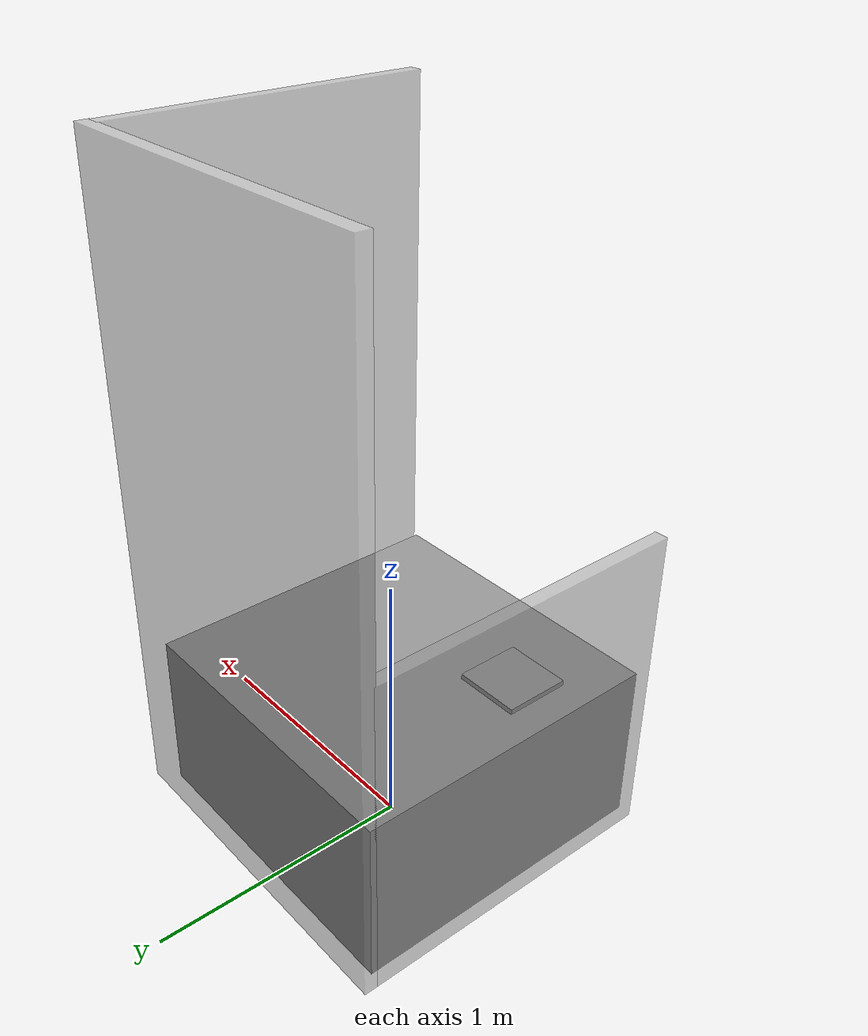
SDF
<?xml version='1.0'?>
<sdf version='1.7'>
  <model name='env_hc10'>
    <link name='mur_gauche'>
      <inertial>
        <mass>1</mass>
        <inertia>
          <ixx>0.166667</ixx>
          <ixy>0</ixy>
          <ixz>0</ixz>
          <iyy>0.166667</iyy>
          <iyz>0</iyz>
          <izz>0.166667</izz>
        </inertia>
        <pose>0 0 0 0 -0 0</pose>
      </inertial>
      <pose>-0.57 -0.062 0.615 0 -0 0</pose>
      <gravity>1</gravity>
      <self_collide>0</self_collide>
      <kinematic>0</kinematic>
      <enable_wind>0</enable_wind>
      <visual name='visual'>
        <pose>0 0 0 0 -0 0</pose>
        <geometry>
          <box>
            <size>0.05 1.22 1.23</size>
          </box>
        </geometry>
        <material>
          <lighting>1</lighting>
          <script>
            <uri>file://media/materials/scripts/gazebo.material</uri>
            <name>Gazebo/Grey</name>
          </script>
          <shader type='pixel'>
            <normal_map>__default__</normal_map>
          </shader>
          <ambient>0.3 0.3 0.3 1</ambient>
          <diffuse>0.7 0.7 0.7 1</diffuse>
          <specular>0.01 0.01 0.01 1</specular>
          <emissive>0 0 0 1</emissive>
        </material>
        <transparency>0.5</transparency>
        <cast_shadows>1</cast_shadows>
      </visual>
      <collision name='collision'>
        <laser_retro>0</laser_retro>
        <max_contacts>10</max_contacts>
        <pose>0 0 0 0 -0 0</pose>
        <geometry>
          <box>
            <size>0.05 1.22 1.23</size>
          </box>
        </geometry>
        <surface>
          <friction>
            <ode>
              <mu>1</mu>
              <mu2>1</mu2>
              <fdir1>0 0 0</fdir1>
              <slip1>0</slip1>
              <slip2>0</slip2>
            </ode>
            <torsional>
              <coefficient>1</coefficient>
              <patch_radius>0</patch_radius>
              <surface_radius>0</surface_radius>
              <use_patch_radius>1</use_patch_radius>
              <ode>
                <slip>0</slip>
              </ode>
            </torsional>
          </friction>
          <bounce>
            <restitution_coefficient>0</restitution_coefficient>
            <threshold>1e+06</threshold>
          </bounce>
          <contact>
            <collide_without_contact>0</collide_without_contact>
            <collide_without_contact_bitmask>1</collide_without_contact_bitmask>
            <collide_bitmask>1</collide_bitmask>
            <ode>
              <soft_cfm>0</soft_cfm>
              <soft_erp>0.2</soft_erp>
              <kp>1e+13</kp>
              <kd>1</kd>
              <max_vel>0.01</max_vel>
              <min_depth>0</min_depth>
            </ode>
            <bullet>
              <split_impulse>1</split_impulse>
              <split_impulse_penetration_threshold>-0.01</split_impulse_penetration_threshold>
              <soft_cfm>0</soft_cfm>
              <soft_erp>0.2</soft_erp>
              <kp>1e+13</kp>
              <kd>1</kd>
            </bullet>
          </contact>
        </surface>
      </collision>
    </link>
    <link name='mur_droite'>
      <inertial>
        <mass>1</mass>
        <inertia>
          <ixx>0.166667</ixx>
          <ixy>0</ixy>
          <ixz>0</ixz>
          <iyy>0.166667</iyy>
          <iyz>0</iyz>
          <izz>0.166667</izz>
        </inertia>
        <pose>0 0 0 0 -0 0</pose>
      </inertial>
      <pose>0.695 -0.062 1.25 0 -0 0</pose>
      <gravity>1</gravity>
      <self_collide>0</self_collide>
      <kinematic>0</kinematic>
      <enable_wind>0</enable_wind>
      <visual name='visual'>
        <pose>0 0 0 0 -0 0</pose>
        <geometry>
          <box>
            <size>0.05 1.22 2.5</size>
          </box>
        </geometry>
        <material>
          <lighting>1</lighting>
          <script>
            <uri>file://media/materials/scripts/gazebo.material</uri>
            <name>Gazebo/Grey</name>
          </script>
          <shader type='pixel'>
            <normal_map>__default__</normal_map>
          </shader>
          <ambient>0.3 0.3 0.3 1</ambient>
          <diffuse>0.7 0.7 0.7 1</diffuse>
          <specular>0.01 0.01 0.01 1</specular>
          <emissive>0 0 0 1</emissive>
        </material>
        <transparency>0.5</transparency>
        <cast_shadows>1</cast_shadows>
      </visual>
      <collision name='collision'>
        <laser_retro>0</laser_retro>
        <max_contacts>10</max_contacts>
        <pose>0 0 0 0 -0 0</pose>
        <geometry>
          <box>
            <size>0.05 1.22 2.5</size>
          </box>
        </geometry>
        <surface>
          <friction>
            <ode>
              <mu>1</mu>
              <mu2>1</mu2>
              <fdir1>0 0 0</fdir1>
              <slip1>0</slip1>
              <slip2>0</slip2>
            </ode>
            <torsional>
              <coefficient>1</coefficient>
              <patch_radius>0</patch_radius>
              <surface_radius>0</surface_radius>
              <use_patch_radius>1</use_patch_radius>
              <ode>
                <slip>0</slip>
              </ode>
            </torsional>
          </friction>
          <bounce>
            <restitution_coefficient>0</restitution_coefficient>
            <threshold>1e+06</threshold>
          </bounce>
          <contact>
            <collide_without_contact>0</collide_without_contact>
            <collide_without_contact_bitmask>1</collide_without_contact_bitmask>
            <collide_bitmask>1</collide_bitmask>
            <ode>
              <soft_cfm>0</soft_cfm>
              <soft_erp>0.2</soft_erp>
              <kp>1e+13</kp>
              <kd>1</kd>
              <max_vel>0.01</max_vel>
              <min_depth>0</min_depth>
            </ode>
            <bullet>
              <split_impulse>1</split_impulse>
              <split_impulse_penetration_threshold>-0.01</split_impulse_penetration_threshold>
              <soft_cfm>0</soft_cfm>
              <soft_erp>0.2</soft_erp>
              <kp>1e+13</kp>
              <kd>1</kd>
            </bullet>
          </contact>
        </surface>
      </collision>
    </link>
    <link name='mur_arriere'>
      <inertial>
        <mass>1</mass>
        <inertia>
          <ixx>0.166667</ixx>
          <ixy>0</ixy>
          <ixz>0</ixz>
          <iyy>0.166667</iyy>
          <iyz>0</iyz>
          <izz>0.166667</izz>
        </inertia>
        <pose>0 0 0 0 -0 0</pose>
      </inertial>
      <pose>0.065 0.568 1.25 0 -0 0</pose>
      <gravity>1</gravity>
      <self_collide>0</self_collide>
      <kinematic>0</kinematic>
      <enable_wind>0</enable_wind>
      <visual name='visual'>
        <pose>0 0 0 0 -0 0</pose>
        <geometry>
          <box>
            <size>1.32 0.05 2.5</size>
          </box>
        </geometry>
        <material>
          <lighting>1</lighting>
          <script>
            <uri>file://media/materials/scripts/gazebo.material</uri>
            <name>Gazebo/Grey</name>
          </script>
          <shader type='pixel'>
            <normal_map>__default__</normal_map>
          </shader>
          <ambient>0.3 0.3 0.3 1</ambient>
          <diffuse>0.7 0.7 0.7 1</diffuse>
          <specular>0.01 0.01 0.01 1</specular>
          <emissive>0 0 0 1</emissive>
        </material>
        <transparency>0.5</transparency>
        <cast_shadows>1</cast_shadows>
      </visual>
      <collision name='collision'>
        <laser_retro>0</laser_retro>
        <max_contacts>10</max_contacts>
        <pose>0 0 0 0 -0 0</pose>
        <geometry>
          <box>
            <size>1.32 0.05 2.5</size>
          </box>
        </geometry>
        <surface>
          <friction>
            <ode>
              <mu>1</mu>
              <mu2>1</mu2>
              <fdir1>0 0 0</fdir1>
              <slip1>0</slip1>
              <slip2>0</slip2>
            </ode>
            <torsional>
              <coefficient>1</coefficient>
              <patch_radius>0</patch_radius>
              <surface_radius>0</surface_radius>
              <use_patch_radius>1</use_patch_radius>
              <ode>
                <slip>0</slip>
              </ode>
            </torsional>
          </friction>
          <bounce>
            <restitution_coefficient>0</restitution_coefficient>
            <threshold>1e+06</threshold>
          </bounce>
          <contact>
            <collide_without_contact>0</collide_without_contact>
            <collide_without_contact_bitmask>1</collide_without_contact_bitmask>
            <collide_bitmask>1</collide_bitmask>
            <ode>
              <soft_cfm>0</soft_cfm>
              <soft_erp>0.2</soft_erp>
              <kp>1e+13</kp>
              <kd>1</kd>
              <max_vel>0.01</max_vel>
              <min_depth>0</min_depth>
            </ode>
            <bullet>
              <split_impulse>1</split_impulse>
              <split_impulse_penetration_threshold>-0.01</split_impulse_penetration_threshold>
              <soft_cfm>0</soft_cfm>
              <soft_erp>0.2</soft_erp>
              <kp>1e+13</kp>
              <kd>1</kd>
            </bullet>
          </contact>
        </surface>
      </collision>
    </link>
    <link name='plan_travail'>
      <inertial>
        <mass>1</mass>
        <inertia>
          <ixx>0.166667</ixx>
          <ixy>0</ixy>
          <ixz>0</ixz>
          <iyy>0.166667</iyy>
          <iyz>0</iyz>
          <izz>0.166667</izz>
        </inertia>
        <pose>0 0 0 0 -0 0</pose>
      </inertial>
      <pose>0.055 -0.072 0.32 0 -0 0</pose>
      <gravity>1</gravity>
      <self_collide>0</self_collide>
      <kinematic>0</kinematic>
      <enable_wind>0</enable_wind>
      <visual name='visual'>
        <pose>0 0 0 0 -0 0</pose>
        <geometry>
          <box>
            <size>1.2 1.2 0.64</size>
          </box>
        </geometry>
        <material>
          <lighting>1</lighting>
          <script>
            <uri>file://media/materials/scripts/gazebo.material</uri>
            <name>Gazebo/Grey</name>
          </script>
          <shader type='pixel'>
            <normal_map>__default__</normal_map>
          </shader>
          <ambient>0.3 0.3 0.3 1</ambient>
          <diffuse>0.7 0.7 0.7 1</diffuse>
          <specular>0.01 0.01 0.01 1</specular>
          <emissive>0 0 0 1</emissive>
        </material>
        <transparency>0</transparency>
        <cast_shadows>1</cast_shadows>
      </visual>
      <collision name='collision'>
        <laser_retro>0</laser_retro>
        <max_contacts>10</max_contacts>
        <pose>0 0 0 0 -0 0</pose>
        <geometry>
          <box>
            <size>1.2 1.2 0.64</size>
          </box>
        </geometry>
        <surface>
          <friction>
            <ode>
              <mu>1</mu>
              <mu2>1</mu2>
              <fdir1>0 0 0</fdir1>
              <slip1>0</slip1>
              <slip2>0</slip2>
            </ode>
            <torsional>
              <coefficient>1</coefficient>
              <patch_radius>0</patch_radius>
              <surface_radius>0</surface_radius>
              <use_patch_radius>1</use_patch_radius>
              <ode>
                <slip>0</slip>
              </ode>
            </torsional>
          </friction>
          <bounce>
            <restitution_coefficient>0</restitution_coefficient>
            <threshold>1e+06</threshold>
          </bounce>
          <contact>
            <collide_without_contact>0</collide_without_contact>
            <collide_without_contact_bitmask>1</collide_without_contact_bitmask>
            <collide_bitmask>1</collide_bitmask>
            <ode>
              <soft_cfm>0</soft_cfm>
              <soft_erp>0.2</soft_erp>
              <kp>1e+13</kp>
              <kd>1</kd>
              <max_vel>0.01</max_vel>
              <min_depth>0</min_depth>
            </ode>
            <bullet>
              <split_impulse>1</split_impulse>
              <split_impulse_penetration_threshold>-0.01</split_impulse_penetration_threshold>
              <soft_cfm>0</soft_cfm>
              <soft_erp>0.2</soft_erp>
              <kp>1e+13</kp>
              <kd>1</kd>
            </bullet>
          </contact>
        </surface>
      </collision>
    </link>
    <link name='base_robot'>
      <inertial>
        <mass>1</mass>
        <inertia>
          <ixx>0.166667</ixx>
          <ixy>0</ixy>
          <ixz>0</ixz>
          <iyy>0.166667</iyy>
          <iyz>0</iyz>
          <izz>0.166667</izz>
        </inertia>
        <pose>0 0 0 0 -0 0</pose>
      </inertial>
      <pose>-0.3 -0.3 0.65 0 -0 0</pose>
      <gravity>1</gravity>
      <self_collide>0</self_collide>
      <kinematic>0</kinematic>
      <enable_wind>0</enable_wind>
      <visual name='visual'>
        <pose>0 0 0 0 -0 0</pose>
        <geometry>
          <box>
            <size>0.25 0.25 0.02</size>
          </box>
        </geometry>
        <material>
          <lighting>1</lighting>
          <script>
            <uri>file://media/materials/scripts/gazebo.material</uri>
            <name>Gazebo/Grey</name>
          </script>
          <shader type='pixel'>
            <normal_map>__default__</normal_map>
          </shader>
          <ambient>0.3 0.3 0.3 1</ambient>
          <diffuse>0.7 0.7 0.7 1</diffuse>
          <specular>0.01 0.01 0.01 1</specular>
          <emissive>0 0 0 1</emissive>
        </material>
        <transparency>0</transparency>
        <cast_shadows>1</cast_shadows>
      </visual>
      <collision name='collision'>
        <laser_retro>0</laser_retro>
        <max_contacts>10</max_contacts>
        <pose>0 0 0 0 -0 0</pose>
        <geometry>
          <box>
            <size>0.25 0.25 0.02</size>
          </box>
        </geometry>
        <surface>
          <friction>
            <ode>
              <mu>1</mu>
              <mu2>1</mu2>
              <fdir1>0 0 0</fdir1>
              <slip1>0</slip1>
              <slip2>0</slip2>
            </ode>
            <torsional>
              <coefficient>1</coefficient>
              <patch_radius>0</patch_radius>
              <surface_radius>0</surface_radius>
              <use_patch_radius>1</use_patch_radius>
              <ode>
                <slip>0</slip>
              </ode>
            </torsional>
          </friction>
          <bounce>
            <restitution_coefficient>0</restitution_coefficient>
            <threshold>1e+06</threshold>
          </bounce>
          <contact>
            <collide_without_contact>0</collide_without_contact>
            <collide_without_contact_bitmask>1</collide_without_contact_bitmask>
            <collide_bitmask>1</collide_bitmask>
            <ode>
              <soft_cfm>0</soft_cfm>
              <soft_erp>0.2</soft_erp>
              <kp>1e+13</kp>
              <kd>1</kd>
              <max_vel>0.01</max_vel>
              <min_depth>0</min_depth>
            </ode>
            <bullet>
              <split_impulse>1</split_impulse>
              <split_impulse_penetration_threshold>-0.01</split_impulse_penetration_threshold>
              <soft_cfm>0</soft_cfm>
              <soft_erp>0.2</soft_erp>
              <kp>1e+13</kp>
              <kd>1</kd>
            </bullet>
          </contact>
        </surface>
      </collision>
    </link>
    <static>1</static>
    <allow_auto_disable>1</allow_auto_disable>
  </model>
</sdf>
